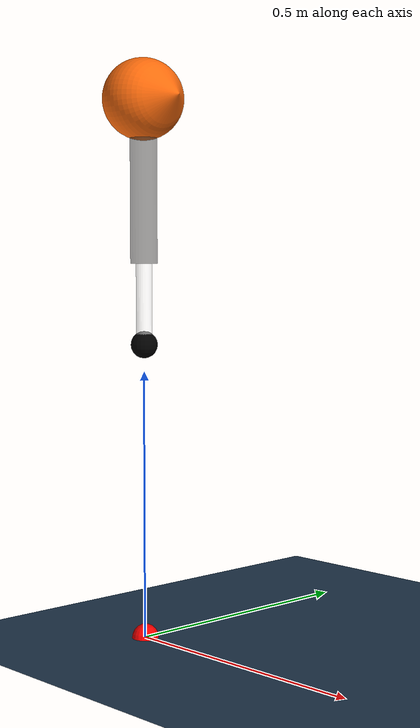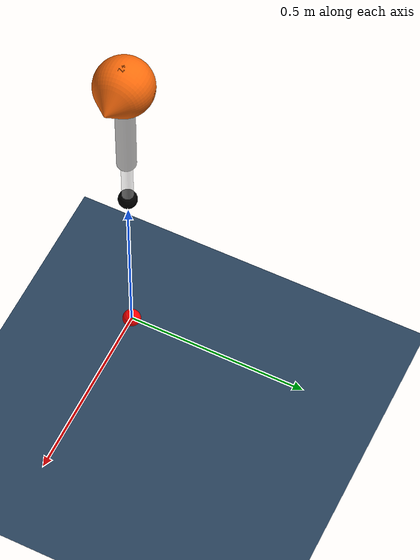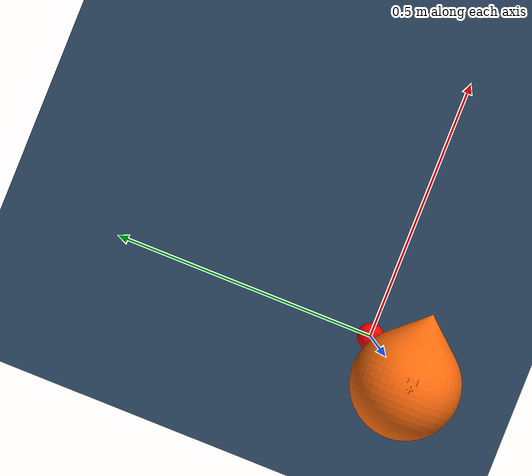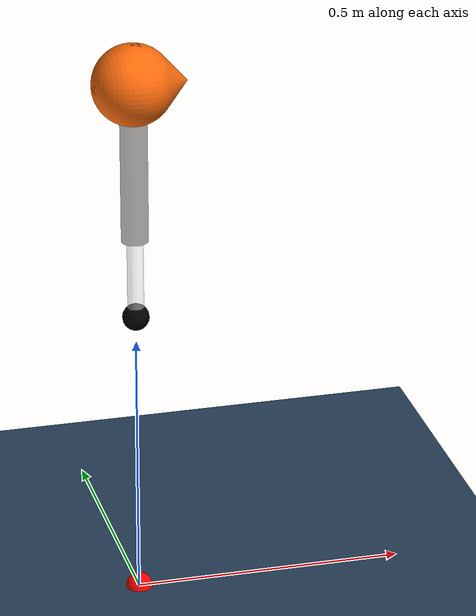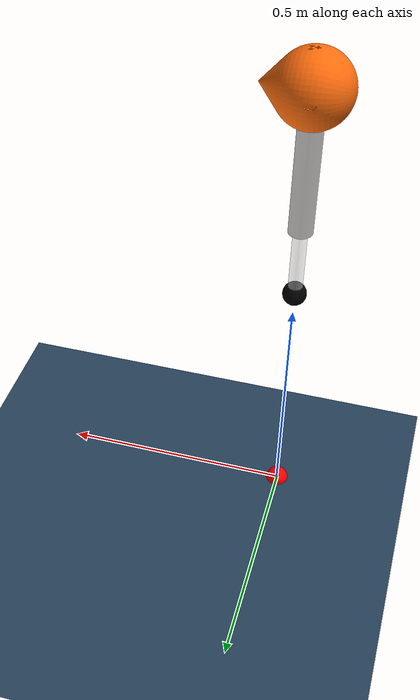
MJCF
<?xml version="1.0" encoding="utf-8"?>
<mujoco model="3D_SLIP">

    <!-- Simualtor Parameters -->
    <option timestep="0.001" iterations="5" ls_iterations="5" solver="Newton" gravity="0 0 -9.81">
        <flag eulerdamp="disable"/>
    </option>

    <!-- Specify the light settings -->
    <visual>
        <headlight diffuse="0.6 0.6 0.6" ambient="0.3 0.3 0.3" specular="0 0 0"/>
        <rgba haze="0.15 0.25 0.35 1"/>
        <global azimuth="150" elevation="-20" offwidth="1920" offheight="1080"/>
    </visual>

    <!-- List the location of all meshes -->
    <asset>
        <mesh file="../meshes/slip/Body.STL" name="com"/>
        <texture type="skybox" builtin="gradient" rgb1="0.3 0.5 0.7" rgb2="0 0 0" width="512" height="3072"/>
        <texture type="2d" name="groundplane" builtin="checker" mark="edge" rgb1="0.2 0.3 0.4" rgb2="0.1 0.2 0.3"
        markrgb="0.8 0.8 0.8" width="300" height="300"/>
        <material name="groundplane" texture="groundplane" texuniform="true" texrepeat="5 5" reflectance="0.2"/>
    </asset>

    <!-- Set the angles to be in radians -->
    <compiler angle="radian" autolimits="true" eulerseq="zyx"/>

    <!-- Default properties -->
    <default>
        <geom conaffinity="1" contype="1" density="0.5" friction="0.8 0.8 0.8"/>
        <default class="visual">
            <geom conaffinity="0" contype="0"/>
        </default>
    </default>

    <!-- Bodies -->
    <worldbody>
        <!-- Ground -->
        <geom name="plane" type="plane" size="0.0 0.0 0.125" material="groundplane"/>

        <!-- Origin Visual -->
        <geom name="origin_sphere" type="sphere" size="0.025" pos="0 0 0" rgba="1 0 0 1" conaffinity="0" contype="0"/>

        <!-- Robot -->
        <body name="com" pos="0 0 1.0">

            <!-- A light that tracks the CoM -->
            <light pos="0 0 3" dir="0 0 -1" directional="false" mode="trackcom"/>

            <!-- Floating Base -->
            <joint name="root_x" type="slide" axis="1 0 0"/>
            <joint name="root_y" type="slide" axis="0 1 0"/>
            <joint name="root_z" type="slide" axis="0 0 1"/>

            <!-- CoM has sphere collisions but a fancy mesh visual-->
            <geom name="com_mesh" class="visual" mesh="com" type="mesh" rgba="1.0 0.424 0.047 1.0" />
            <geom name="com_collision" type="sphere" density="1.0" size="0.075" rgba="0.0 0.0 0.0 0.0" />

            <!-- Upper Leg -->
            <body name="leg_upper" pos="0 0 -0.15">
                <joint name="leg_roll" axis="1 0 0" pos="0 0 0.15" limited="true" range="-1.5 1.5"/>
                <joint name="leg_pitch" axis="0 -1 0" pos="0 0 0.15" limited="true" range="-1.5 1.5"/>
                <geom name="leg_upper" class="visual" type="cylinder" density="0.5" size="0.025 0.15" rgba="0.2 0.2 0.2 0.5"/>

                <!-- Lower Leg -->
                <body name="leg_lower" pos="0 0 -0.15">
                    <!-- Spring stiffness here? -->
                    <joint name="leg_prismatic" axis="0 0 1" type="slide" limited="true" range="-0.15 0.15" stiffness="3.0" damping="0.001" frictionloss="0"/>
                    <geom name="leg_lower" class="visual" type="cylinder" density="0.5" size="0.015 0.15" rgba="1.0 1.0 1.0 0.5"/>

                    <!-- Foot -->
                    <body name="foot" pos="0 0 -0.15">
                        <geom name="foot_sphere" type="sphere" density="0.5" size="0.025" rgba="0 0 0 1.0"/>
                    </body>

                </body>
            </body>
        </body>
    </worldbody>

    <!-- Actuators -->
    <actuator>
        <motor name="leg_roll" joint="leg_roll" ctrllimited="false"/>
        <motor name="leg_pitch" joint="leg_pitch" ctrllimited="false"/>
    </actuator>

</mujoco>
